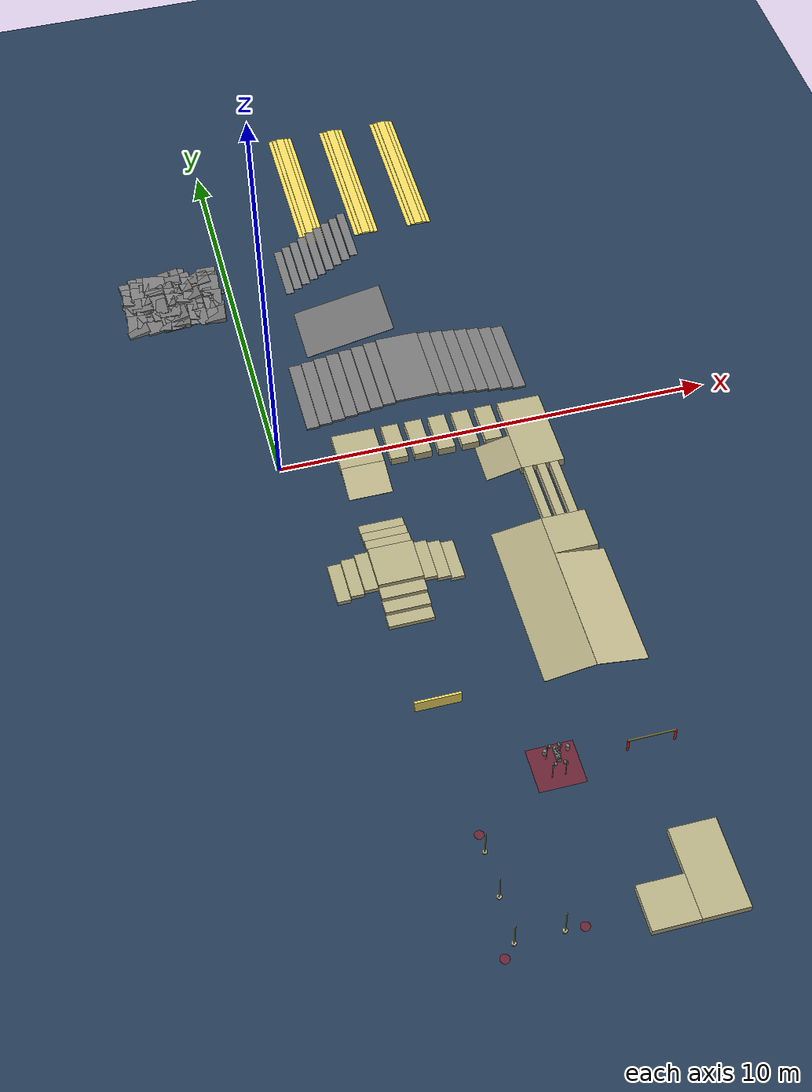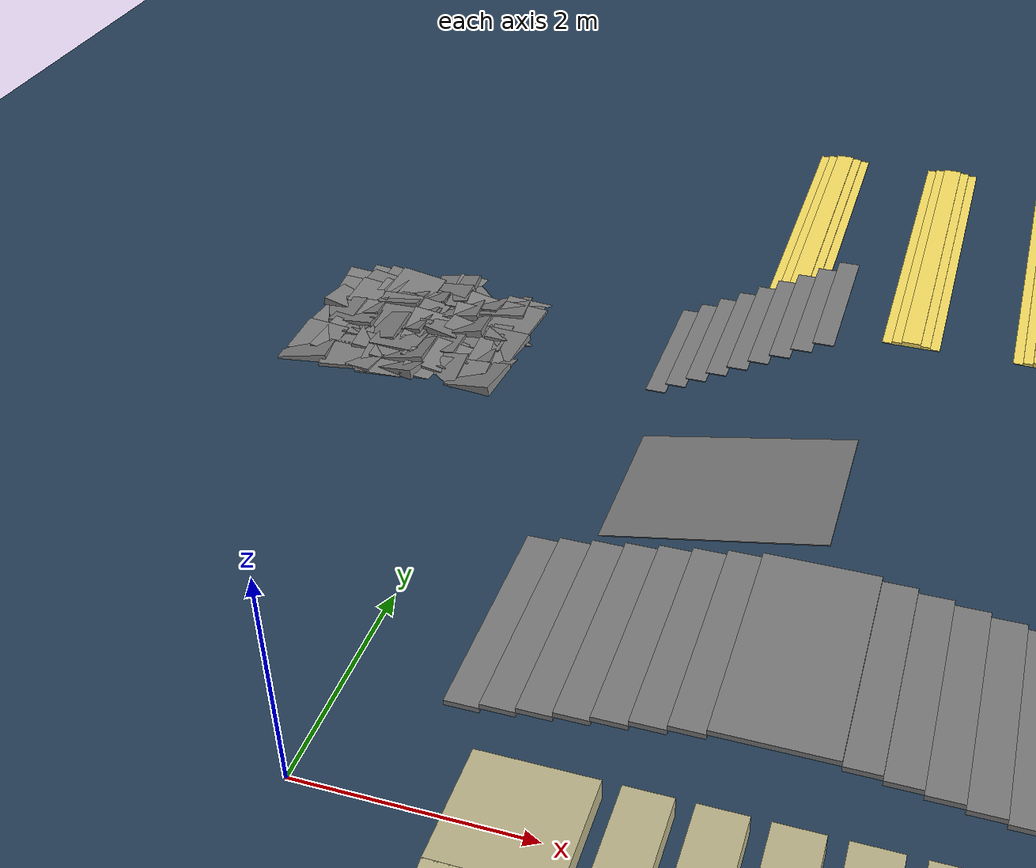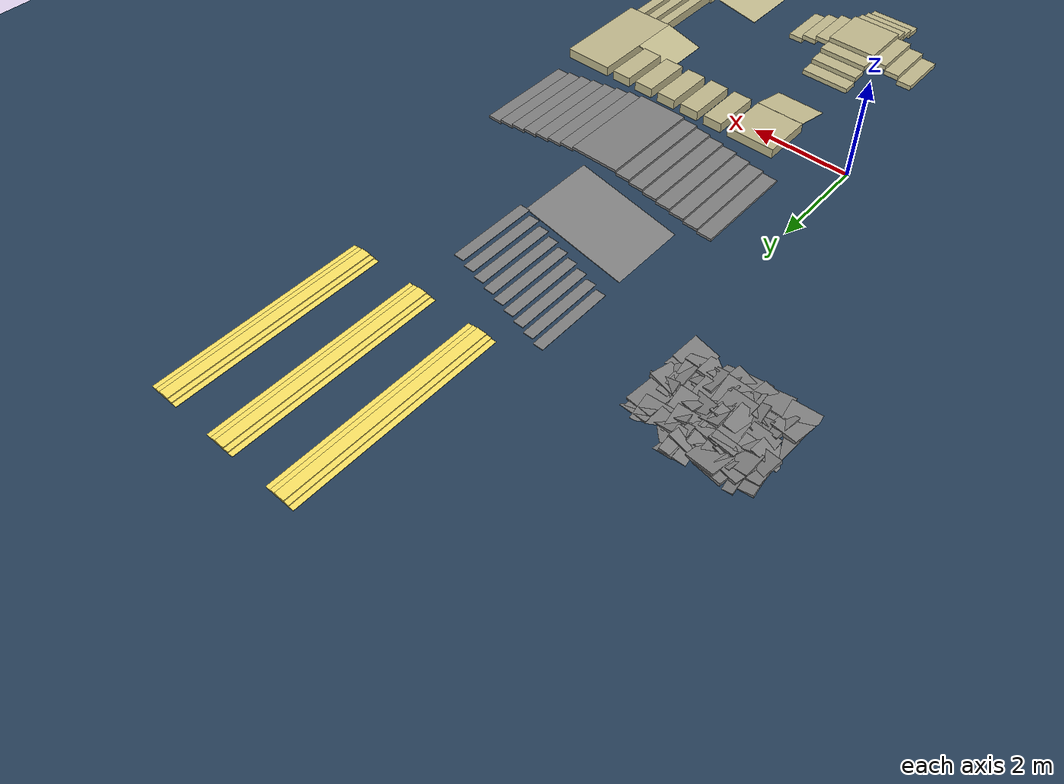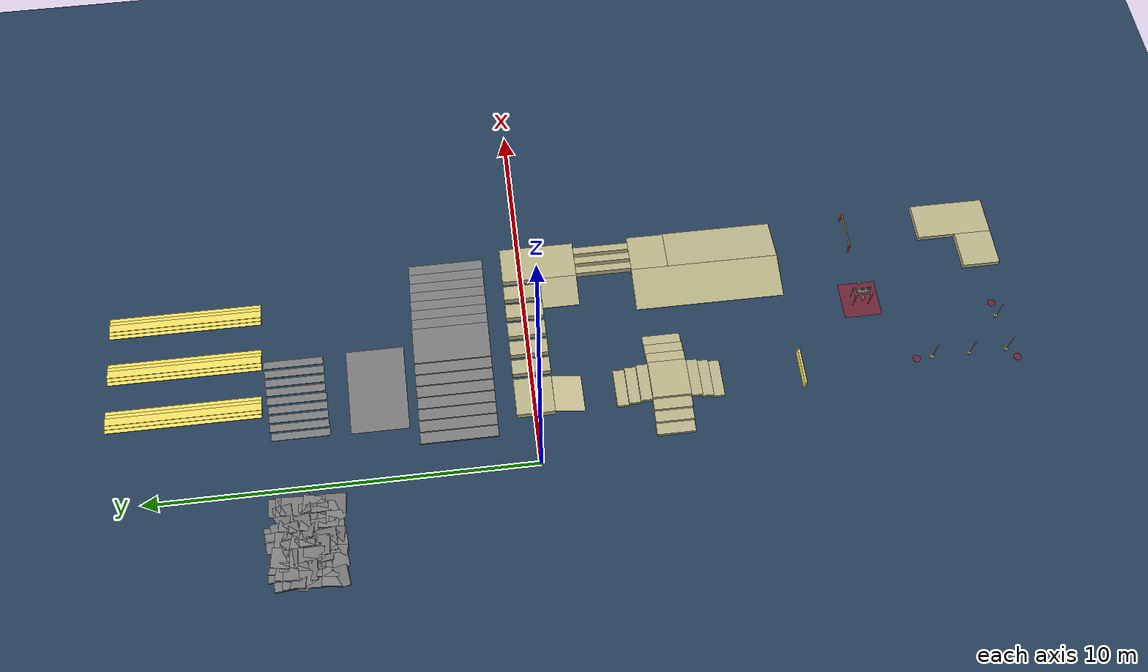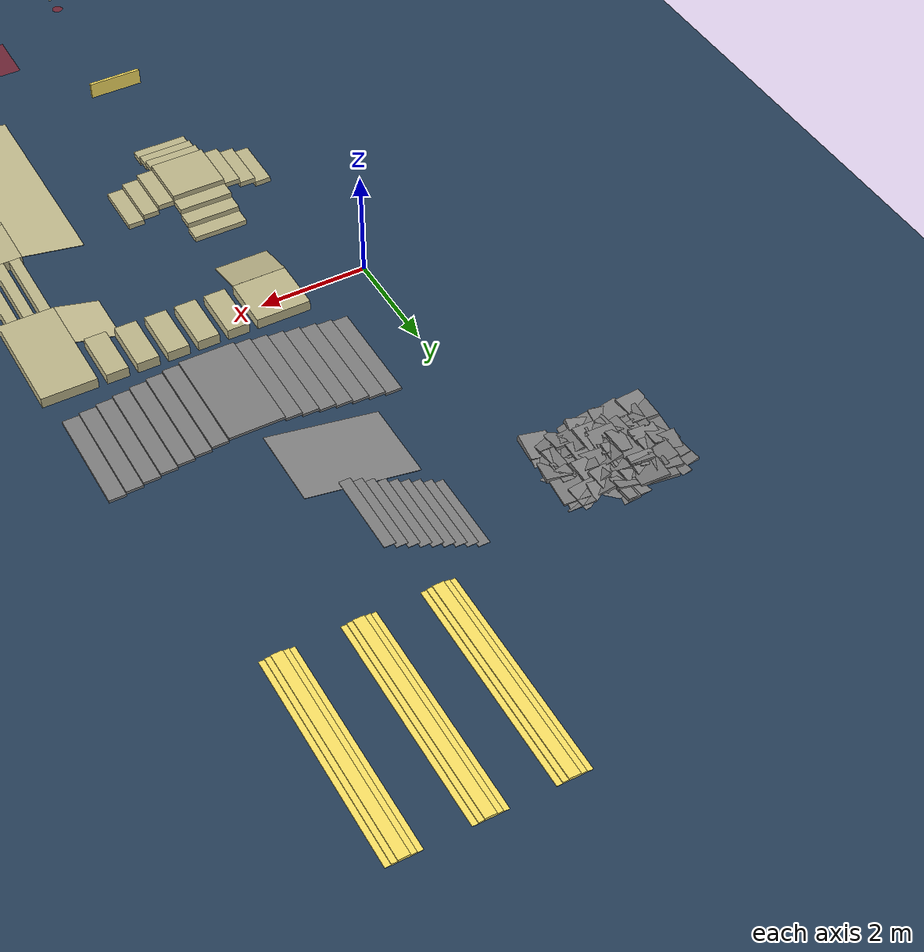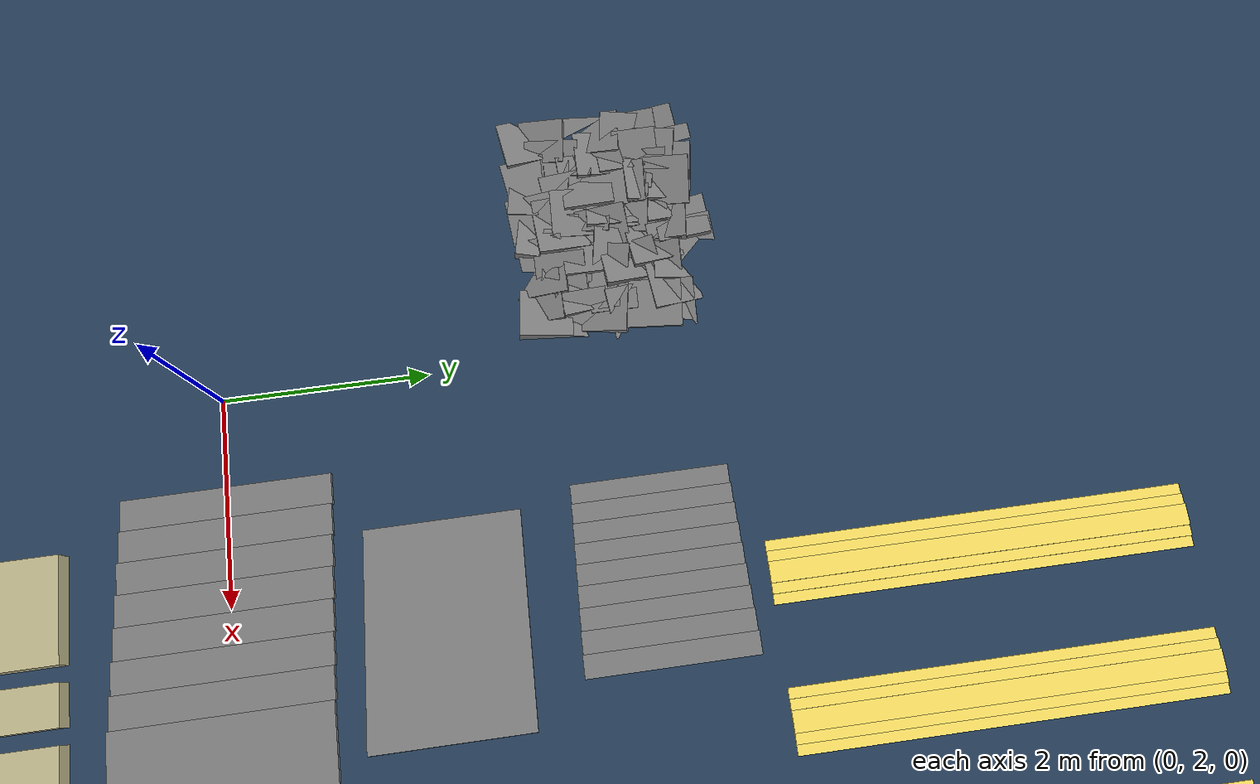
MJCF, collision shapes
<mujoco model="dog terrain scene">
<compiler angle="radian" meshdir="../meshes/"/>
<size njmax="500" nconmax="100"/>
<option gravity="0 0 -9.806" iterations="100" solver="Newton" timestep="0.005" integrator="implicitfast"/>

<default>
  <geom contype="1" conaffinity="1" condim="6" friction="0.6 0.005 0.01" margin="0.001" group="0"/>
  <light castshadow="false" diffuse="1 1 1"/>
  <joint damping="0.01" armature="0.01" frictionloss="0.2"/>
  <camera fovy="60"/>
</default>

<statistic center="3.7 -9.0 0.4" extent="5.0"/>
<visual>
<headlight diffuse="0.6 0.6 0.6" ambient="0.3 0.3 0.3" specular="0 0 0"/>
<rgba haze="0.15 0.25 0.35 1" com="0.502 1.0 0 0.5" contactforce="0.98 0.4 0.4 0.7" contactpoint="1.0 1.0 0.6 0.4"/>
<global azimuth="90" elevation="-20"/>
<scale com="0.2" forcewidth="0.035" contactwidth="0.10" contactheight="0.04"/>
</visual>
<asset>
<texture type="skybox" builtin="gradient" rgb1="0.3 0.5 0.7" rgb2="0 0 0" width="512" height="3072"/>
<texture type="2d" name="groundplane" builtin="checker" mark="edge" rgb1="0.2 0.3 0.4" rgb2="0.1 0.2 0.3" markrgb="0.8 0.8 0.8" width="300" height="300"/>
<material name="groundplane" texture="groundplane" texuniform="true" texrepeat="5 5" reflectance="0.2"/>

<!-- dog_t meshes -->
<mesh name="base"     file="base.STL"/>
<mesh name="imu"      file="imu.STL"/>
<mesh name="radar"    file="radar.STL"/>
<mesh name="camera"   file="camera.STL"/>
<mesh name="pump"     file="pump.STL"/>
<mesh name="FL_hip"   file="FL_hip.STL"/>
<mesh name="FL_thigh" file="FL_thigh.STL"/>
<mesh name="FL_calf"  file="FL_calf.STL"/>
<mesh name="FL_foot"  file="FL_foot.STL"/>
<mesh name="FR_hip"   file="FR_hip.STL"/>
<mesh name="FR_thigh" file="FR_thigh.STL"/>
<mesh name="FR_calf"  file="FR_calf.STL"/>
<mesh name="FR_foot"  file="FR_foot.STL"/>
<mesh name="RR_hip"   file="RR_hip.STL"/>
<mesh name="RR_thigh" file="RR_thigh.STL"/>
<mesh name="RR_calf"  file="RR_calf.STL"/>
<mesh name="RR_foot"  file="RR_foot.STL"/>
<mesh name="RL_hip"   file="RL_hip.STL"/>
<mesh name="RL_thigh" file="RL_thigh.STL"/>
<mesh name="RL_calf"  file="RL_calf.STL"/>
<mesh name="RL_foot"  file="RL_foot.STL"/>
</asset>
<worldbody>
<light pos="0 0 1.5" dir="0 0 -1" directional="true" />
<camera name="track" mode="trackcom" pos="0 -1.3 1.6" xyaxes="1 0 0 0 0.707 0.707"/>
<geom name="floor" size="0 0 0.05" type="plane" material="groundplane" />

<!-- 30cm高墙：旋转90度，沿x轴方向放置，并与T型楼梯中心线 y=-3.50 对齐 -->
<geom pos="1.8 -7.0 0.15"
      type="box"
      size="0.025 0.5 0.15"
      quat="0.7071068 0.0 0.0 0.7071068"
      rgba="1.0 0.9 0.4 1.0"/>

<!-- 沙砾碎木坑：x正方向边界与10度斜坡+x边界对齐，y正边界距斜坡y负边界4m -->

<geom pos="4.8361 -12.5 0.075"
      type="box"
      size="0.5 0.5 0.075"
      quat="0.0 0.0 0.0 1.0"
      rgba="0.75 0.72 0.55 1.0"/>

<geom pos="5.8361 -12.0 0.075"
      type="box"
      size="0.5 1.0 0.075"
      quat="0.0 0.0 0.0 1.0"
      rgba="0.75 0.72 0.55 1.0"/>

<!-- 限高杆 -->
<geom pos="6.2 -9.0 0.155"
      type="cylinder"
      size="0.025 0.155"
      quat="1.0 0.0 0.0 0.0"
      rgba="0.8 0.1 0.1 1.0" />

<geom pos="5.2 -9.0 0.155"
      type="cylinder"
      size="0.025 0.155"
      quat="1.0 0.0 0.0 0.0"
      rgba="0.8 0.1 0.1 1.0" />
<geom pos="5.7 -9.0 0.325"
      type="cylinder"
      size="0.015 0.5"
      quat="0.7071068 0.0 0.7071068 0.0"
      rgba="1.0 0.9 0.4 1.0"/>

<!-- 1m × 1m 正方形颜色块，出发区-->
<geom pos="3.7 -9.0 0.0"
      type="box"
      size="0.5 0.5 0.001"
      rgba="1.0 0.0 0.0 0.35"
      contype="0"
      conaffinity="0" />

<!-- 10cm梯形台阶：T型楼梯，最高平台与 x=5.7 y=-3.5 平台在y轴方向对齐 -->

<geom pos="1.80 -4.75 0.05" type="box" size="0.15 0.5 0.05" quat="0.7071068 0.0 0.0 0.7071068" rgba="0.75 0.72 0.55 1.0" />
<geom pos="1.80 -4.45 0.15" type="box" size="0.15 0.5 0.05" quat="0.7071068 0.0 0.0 0.7071068" rgba="0.75 0.72 0.55 1.0"/>
<geom pos="1.80 -4.15 0.25" type="box" size="0.15 0.5 0.05" quat="0.7071068 0.0 0.0 0.7071068" rgba="0.75 0.72 0.55 1.0"/>

<!-- 最高平台：y = -3.50，与目标平台y轴对齐 -->
<geom pos="1.80 -3.50 0.35" type="box" size="0.5 0.5 0.05" quat="0.7071068 0.0 0.0 0.7071068" rgba="0.75 0.72 0.55 1.0"/>

<geom pos="1.80 -2.85 0.25" type="box" size="0.15 0.5 0.05" quat="0.7071068 0.0 0.0 0.7071068" rgba="0.75 0.72 0.55 1.0"/>
<geom pos="1.80 -2.55 0.15" type="box" size="0.15 0.5 0.05" quat="0.7071068 0.0 0.0 0.7071068" rgba="0.75 0.72 0.55 1.0"/>
<geom pos="1.80 -2.25 0.05" type="box" size="0.15 0.5 0.05" quat="0.7071068 0.0 0.0 0.7071068" rgba="0.75 0.72 0.55 1.0"/>

<!-- 顶部平台向 +x 方向连接地面的10cm台阶，同样y轴移动到 -3.50 -->

<geom pos="2.45 -3.50 0.25" type="box" size="0.15 0.5 0.05" quat="1.0 0.0 0.0 0.0" rgba="0.75 0.72 0.55 1.0"/>
<geom pos="2.75 -3.50 0.15" type="box" size="0.15 0.5 0.05" quat="1.0 0.0 0.0 0.0" rgba="0.75 0.72 0.55 1.0"/>
<geom pos="3.05 -3.50 0.05" type="box" size="0.15 0.5 0.05" quat="1.0 0.0 0.0 0.0" rgba="0.75 0.72 0.55 1.0"/>

<!-- 顶部平台向 -x 方向连接地面的10cm台阶 -->

<geom pos="1.15 -3.50 0.25" type="box" size="0.15 0.5 0.05" quat="1.0 0.0 0.0 0.0" rgba="0.75 0.72 0.55 1.0"/>
<geom pos="0.85 -3.50 0.15" type="box" size="0.15 0.5 0.05" quat="1.0 0.0 0.0 0.0" rgba="0.75 0.72 0.55 1.0"/>
<geom pos="0.55 -3.50 0.05" type="box" size="0.15 0.5 0.05" quat="1.0 0.0 0.0 0.0" rgba="0.75 0.72 0.55 1.0"/>

<!-- 斜坡木桥A木桥B -->
<geom pos="1.8 -0.88 0.1" type="box" size="0.40 0.5 0.005" quat="0.701836 0.086175 -0.086175 0.701836" rgba="0.75 0.72 0.55 1.0"/>
<geom pos="1.8 0.0 0.10" type="box" size="0.5 0.5 0.10" quat="1.0 0.0 0.0 0.0" rgba="0.75 0.72 0.55 1.0"/>
<geom pos="2.65 0.0 0.10" type="box" size="0.2 0.5 0.10" quat="1.0 0.0 0.0 0.0" rgba="0.75 0.72 0.55 1.0"/>
<geom pos="3.2 0.0 0.10" type="box" size="0.2 0.5 0.10" quat="1.0 0.0 0.0 0.0" rgba="0.75 0.72 0.55 1.0"/>
<geom pos="3.75 0.0 0.10" type="box" size="0.2 0.5 0.10" quat="1.0 0.0 0.0 0.0" rgba="0.75 0.72 0.55 1.0"/>
<geom pos="4.3 0.0 0.10" type="box" size="0.2 0.5 0.10" quat="1.0 0.0 0.0 0.0" rgba="0.75 0.72 0.55 1.0"/>
<geom pos="4.85 0.0 0.10" type="box" size="0.2 0.5 0.10" quat="1.0 0.0 0.0 0.0" rgba="0.75 0.72 0.55 1.0"/>
<geom pos="5.7 -0.5 0.10" type="box" size="0.5 1.0 0.10" quat="1.0 0.0 0.0 0.0" rgba="0.75 0.72 0.55 1.0"/>
<geom pos="4.8002 -1.0 0.0951"
      type="box"
      size="0.4133 0.5 0.005"
      quat="0.992546 0.0 -0.121869 0.0"
      rgba="0.75 0.72 0.55 1.0"/>
<geom pos="5.35 -2.25 0.10" type="box" size="0.1 0.75 0.10" quat="1.0 0.0 0.0 0.0" rgba="0.75 0.72 0.55 1.0"/>
<geom pos="5.65 -2.25 0.10" type="box" size="0.1 0.75 0.10" quat="1.0 0.0 0.0 0.0" rgba="0.75 0.72 0.55 1.0"/>
<geom pos="5.95 -2.25 0.10" type="box" size="0.1 0.75 0.10" quat="1.0 0.0 0.0 0.0" rgba="0.75 0.72 0.55 1.0"/>
<geom pos="5.7 -3.5 0.10" type="box" size="0.5 0.5 0.10" quat="1.0 0.0 0.0 0.0" rgba="0.75 0.72 0.55 1.0"/>
<!-- 10度斜坡：宽4m，斜坡 y正方向边缘 与平台 y正方向边缘 对齐 -->
<geom pos="4.6338 -5.0 0.0951"
      type="box"
      size="0.5759 2.0 0.005"
      quat="0.9961947 0.0 -0.0871557 0.0"
      rgba="0.75 0.72 0.55 1.0"/>
<!-- 新建10度斜坡：宽3m，高端与前一个10度斜坡高端衔接，向+x方向下坡 -->
<geom pos="5.7681 -5.5 0.0951"
      type="box"
      size="0.5759 1.5 0.005"
      quat="0.9961947 0.0 0.0871557 0.0"
      rgba="0.75 0.72 0.55 1.0"/>

<!--绕杆-->
<!-- 直径1m圆形颜色块，仅显示，不碰撞 -->
<geom pos="1.8 -10.1 0.0"
      type="cylinder"
      size="0.1 0.001"
      rgba="1.0 0.0 0.0 0.35"
      contype="0"
      conaffinity="0" />

<geom pos="3.2 -12.5 0.0"
      type="cylinder"
      size="0.1 0.001"
      rgba="1.0 0.0 0.0 0.35"
      contype="0"
      conaffinity="0" />

<geom pos="1.55 -12.75 0.0"
      type="cylinder"
      size="0.1 0.001"
      rgba="1.0 0.0 0.0 0.35"
      contype="0"
      conaffinity="0" />

<!-- 原杆 -->
<geom pos="1.8 -10.5 0.02"
      type="cylinder"
      size="0.05 0.02"
      quat="1.0 0.0 0.0 0.0"
      rgba="0.75 0.72 0.55 1.0" />

<geom pos="1.8 -10.5 0.37"
      type="cylinder"
      size="0.015 0.33"
      quat="1.0 0.0 0.0 0.0"
      rgba="0.75 0.72 0.55 1.0" />

<!-- y轴负方向第1根：间隔1m -->
<geom pos="1.8 -11.5 0.02"
      type="cylinder"
      size="0.05 0.02"
      quat="1.0 0.0 0.0 0.0"
      rgba="0.75 0.72 0.55 1.0" />

<geom pos="1.8 -11.5 0.37"
      type="cylinder"
      size="0.015 0.33"
      quat="1.0 0.0 0.0 0.0"
      rgba="0.75 0.72 0.55 1.0" />

<!-- y轴负方向第2根：继续间隔1m -->
<geom pos="1.8 -12.5 0.02"
      type="cylinder"
      size="0.05 0.02"
      quat="1.0 0.0 0.0 0.0"
      rgba="0.75 0.72 0.55 1.0" />

<geom pos="1.8 -12.5 0.37"
      type="cylinder"
      size="0.015 0.33"
      quat="1.0 0.0 0.0 0.0"
      rgba="0.75 0.72 0.55 1.0" />

<!-- x轴正方向第3根：继续间隔1m -->
<geom pos="2.8 -12.5 0.02"
      type="cylinder"
      size="0.05 0.02"
      quat="1.0 0.0 0.0 0.0"
      rgba="0.75 0.72 0.55 1.0" />

<geom pos="2.8 -12.5 0.37"
      type="cylinder"
      size="0.015 0.33"
      quat="1.0 0.0 0.0 0.0"
      rgba="0.75 0.72 0.55 1.0" />

<!--===================================================================其他障碍=====================================================================================-->

<!-- 5cm台阶 -->
<geom pos="1.0 2.0 0.025" type="box" size="0.15 1.0 0.025" quat="1.0 0.0 0.0 0.0" />
<geom pos="1.3 2.0 0.075" type="box" size="0.15 1.0 0.025" quat="1.0 0.0 0.0 0.0" />
<geom pos="1.6 2.0 0.125" type="box" size="0.15 1.0 0.025" quat="1.0 0.0 0.0 0.0" />
<geom pos="1.9 2.0 0.175" type="box" size="0.15 1.0 0.025" quat="1.0 0.0 0.0 0.0" />
<geom pos="2.2 2.0 0.225" type="box" size="0.15 1.0 0.025" quat="1.0 0.0 0.0 0.0" />
<geom pos="2.5 2.0 0.275" type="box" size="0.15 1.0 0.025" quat="1.0 0.0 0.0 0.0" />
<geom pos="2.8 2.0 0.325" type="box" size="0.15 1.0 0.025" quat="1.0 0.0 0.0 0.0" />
<geom pos="3.45 2.0 0.375" type="box" size="0.5 1.0 0.025" quat="1.0 0.0 0.0 0.0" />
<geom pos="4.1 2.0 0.325" type="box" size="0.15 1.0 0.025" quat="1.0 0.0 0.0 0.0" />
<geom pos="4.4 2.0 0.275" type="box" size="0.15 1.0 0.025" quat="1.0 0.0 0.0 0.0" />
<geom pos="4.7 2.0 0.225" type="box" size="0.15 1.0 0.025" quat="1.0 0.0 0.0 0.0" />
<geom pos="5.0 2.0 0.175" type="box" size="0.15 1.0 0.025" quat="1.0 0.0 0.0 0.0" />
<geom pos="5.3 2.0 0.125" type="box" size="0.15 1.0 0.025" quat="1.0 0.0 0.0 0.0" />
<geom pos="5.6 2.0 0.075" type="box" size="0.15 1.0 0.025" quat="1.0 0.0 0.0 0.0" />
<geom pos="5.9 2.0 0.025" type="box" size="0.15 1.0 0.025" quat="1.0 0.0 0.0 0.0" />

<!-- 斜坡 -->
<geom pos="2.0 4.0 0.1" type="box" size="1.5 0.75 0.005" quat="0.9950041652780258 0.0 -0.09983341664682815 0.0" />

<geom pos="1.4 6.0 0.165" type="box" size="0.1 0.75 0.0049999999999999975" quat="1.0 0.0 0.0 0.0"/>
<geom pos="1.6 6.0 0.275" type="box" size="0.1 0.75 0.0049999999999999975" quat="1.0 0.0 0.0 0.0"/>
<geom pos="1.8 6.0 0.385" type="box" size="0.1 0.75 0.0049999999999999975" quat="1.0 0.0 0.0 0.0"/>
<geom pos="2.0 6.0 0.495" type="box" size="0.1 0.75 0.0049999999999999975" quat="1.0 0.0 0.0 0.0"/>
<geom pos="2.2 6.0 0.605" type="box" size="0.1 0.75 0.0049999999999999975" quat="1.0 0.0 0.0 0.0"/>
<geom pos="2.4 6.0 0.715" type="box" size="0.1 0.75 0.0049999999999999975" quat="1.0 0.0 0.0 0.0"/>
<geom pos="2.5999999999999996 6.0 0.825" type="box" size="0.1 0.75 0.0049999999999999975" quat="1.0 0.0 0.0 0.0"/>
<geom pos="2.8 6.0 0.9349999999999999" type="box" size="0.1 0.75 0.0049999999999999975" quat="1.0 0.0 0.0 0.0"/>
<geom pos="3.0 6.0 1.045" type="box" size="0.1 0.75 0.0049999999999999975" quat="1.0 0.0 0.0 0.0"/>
<geom pos="-2.3179973398407565 5.173660321080885 -0.25" type="box" size="0.2568216778785459 0.2608020098770089 0.2619541072037832" quat="0.9930658271270357 -0.05910360995856133 -0.06731065544310916 0.0761334482746007"/>
<geom pos="-2.3179973398407565 5.3620612607436735 -0.25" type="box" size="0.23778028947050467 0.26051225137569556 0.27137457425982286" quat="0.9959802827127009 0.07435995796871331 0.0004862731479656538 -0.04993632582444846"/>
<geom pos="-2.3179973398407565 5.545897059602109 -0.25" type="box" size="0.23841994611378936 0.2717839884518381 0.22585827399286504" quat="0.9983504429181294 -0.004811901627841528 0.03471877670768104 -0.045473566737405234"/>
<geom pos="-2.3179973398407565 5.7436240471772795 -0.25" type="box" size="0.2552179019048769 0.2548992578792955 0.22547735976326444" quat="0.9968270877924189 -0.029673908987198697 0.06777847718526858 -0.029347814214192768"/>
<geom pos="-2.3179973398407565 5.940214647011584 -0.25" type="box" size="0.24313116620329878 0.2372064979204117 0.26079933745117434" quat="0.9952106364954509 0.05088987714749159 -0.07605843245051555 -0.03436748846516202"/>
<geom pos="-2.3179973398407565 6.165430585901471 -0.25" type="box" size="0.24786042386990592 0.2322559052231109 0.2644037606269708" quat="0.9936075351397807 -0.05017393314139304 0.06986162224674641 -0.07311632022760194"/>
<geom pos="-2.3179973398407565 6.315657865031069 -0.25" type="box" size="0.23704265198840277 0.24982080672772003 0.2530694373586838" quat="0.9981716459301547 0.036179123385437884 0.04523497974247521 0.017269420947002005"/>
<geom pos="-2.3179973398407565 6.489372835072359 -0.25" type="box" size="0.2647428927965494 0.2716292502682415 0.23725049444938928" quat="0.9954041516289313 0.019099981466976248 0.07663366510923347 0.05415761257454444"/>
<geom pos="-2.094119617957536 5.194943631570213 -0.25" type="box" size="0.23176840693038148 0.23782936054799508 0.2282032657053922" quat="0.9973366591969123 0.030692664684553082 -0.030015392527106853 0.058962910104125923"/>
<geom pos="-2.094119617957536 5.441090326561234 -0.25" type="box" size="0.2602142310926322 0.27213502289176367 0.2574009440402366" quat="0.9948915480473169 0.023650461407535205 0.08508706956405496 -0.04890453856469255"/>
<geom pos="-2.094119617957536 5.642958951230403 -0.25" type="box" size="0.24800055056479955 0.24050676557282252 0.23522489807277194" quat="0.9912055235117067 0.06188914817453858 -0.09720856678264424 -0.0650525790586179"/>
<geom pos="-2.094119617957536 5.884810142659838 -0.25" type="box" size="0.24637516954806898 0.24364583504893206 0.2682443460752295" quat="0.9964495083946477 -0.07467561549070643 -0.038754439691442995 0.003165924091257204"/>
<geom pos="-2.094119617957536 6.129893093768145 -0.25" type="box" size="0.2378958269703999 0.25045408022075055 0.24760364656411665" quat="0.9946240462872651 -0.03963038800955788 -0.08917648605658504 0.03464091840526007"/>
<geom pos="-2.094119617957536 6.31135792935651 -0.25" type="box" size="0.2612154064649683 0.2252849660353503 0.26933214617336004" quat="0.997742809172301 0.019590451180868298 0.06391648942914147 -0.006339033565912353"/>
<geom pos="-2.094119617957536 6.4905285510291915 -0.25" type="box" size="0.22768983323309258 0.23025468157122184 0.2748062344121069" quat="0.9940843963100783 0.05105793020576152 0.009164090402224958 -0.0954218016127878"/>
<geom pos="-2.094119617957536 6.650993287072798 -0.25" type="box" size="0.25443787917913946 0.24575387105878618 0.22934424641420587" quat="0.9953832160779188 -0.0075142647566912866 0.08305501342257929 0.04751477371219154"/>
<geom pos="-1.8951777534978893 5.178742263102535 -0.25" type="box" size="0.256127371544264 0.24353861032614957 0.2714578153598507" quat="0.996547165679354 -0.008558846106514282 0.009384988866828401 0.08205129318749771"/>
<geom pos="-1.8951777534978893 5.353646654030374 -0.25" type="box" size="0.23858897994497189 0.2426691342857623 0.26961659613969635" quat="0.997689480058865 0.014145078555906384 0.009115651940537827 -0.06582190381793727"/>
<geom pos="-1.8951777534978893 5.575640096199311 -0.25" type="box" size="0.24430646334884096 0.2676093509240798 0.23693271670520474" quat="0.9976019172675967 -0.06794745094616256 0.006187887696065785 -0.011630503849579829"/>
<geom pos="-1.8951777534978893 5.728196634759373 -0.25" type="box" size="0.25668697148716296 0.2743986770827004 0.23696403861156407" quat="0.9946311966964959 -0.0774649076913635 0.05866511796477466 0.03558615698054331"/>
<geom pos="-1.8951777534978893 5.954288148947323 -0.25" type="box" size="0.2748179458028994 0.25407956175122554 0.25142548243710355" quat="0.9927720663552536 0.03885622734718657 0.06180632563910765 0.09525647469886914"/>
<geom pos="-1.8951777534978893 6.198076908897641 -0.25" type="box" size="0.23522918501552104 0.2714895927340788 0.23659922178360912" quat="0.9944408196408429 0.027722532803612636 -0.06883505448003607 -0.07470376618171105"/>
<geom pos="-1.8951777534978893 6.356335079330304 -0.25" type="box" size="0.253243646653926 0.26648639763264487 0.22751627090926196" quat="0.9924345646356405 0.06351743627133029 0.09661714031088077 -0.041283149154730255"/>
<geom pos="-1.8951777534978893 6.6037178705715744 -0.25" type="box" size="0.2664884535468762 0.26472237049442093 0.2545826559482188" quat="0.996208812433608 0.04792667434016892 0.03088022810200046 -0.06570728596343135"/>
<geom pos="-1.7450143557797366 5.181798049538029 -0.25" type="box" size="0.22764974830145798 0.2314500042225232 0.26635647118774647" quat="0.996420562587967 -0.02530598413067966 -0.01712092616039989 -0.07881968983996092"/>
<geom pos="-1.7450143557797366 5.396539066742657 -0.25" type="box" size="0.24515338305934362 0.25502436912192245 0.23509532716059323" quat="0.9974817825235419 0.033698559354477776 -0.06057332552735373 -0.01501242370995589"/>
<geom pos="-1.7450143557797366 5.5477605493550115 -0.25" type="box" size="0.2368415768982088 0.2653984778068547 0.25193186806340717" quat="0.9933816957092091 -0.04426535864216467 0.0892264769079807 0.057201577537394625"/>
<geom pos="-1.7450143557797366 5.764238738853998 -0.25" type="box" size="0.257475541143157 0.25587521442146555 0.2684267956125346" quat="0.9955849335110497 0.004076118120639651 -0.09299366924131539 0.012091439447074191"/>
<geom pos="-1.7450143557797366 5.942956213887727 -0.25" type="box" size="0.23647345784635188 0.22779489919605103 0.2690566454457882" quat="0.9997372307105926 0.020286738832439623 -0.010113822112874779 0.003410038259163467"/>
<geom pos="-1.7450143557797366 6.162981335139796 -0.25" type="box" size="0.2336152227884161 0.23785626414299832 0.26272786991330355" quat="0.9954569549676405 0.08638675499005252 -0.03150236191317218 -0.024705881136540285"/>
<geom pos="-1.7450143557797366 6.344025407207907 -0.25" type="box" size="0.2364006101773331 0.23674709170116234 0.2660167000427503" quat="0.9941020005048972 -0.09350614404282417 -0.05493059192638792 0.0006660998579442658"/>
<geom pos="-1.7450143557797366 6.5791872438688825 -0.25" type="box" size="0.259653062502181 0.26359758888480966 0.27170867851854713" quat="0.9955751902075182 0.06572529509454274 0.04059253213564211 -0.05350207998588654"/>
<geom pos="-1.4950537649717406 5.196975242498044 -0.25" type="box" size="0.24902209995429173 0.24604186796843594 0.26555264385759036" quat="0.9981753741369879 0.027059282981497578 0.02078151255996191 0.049818133312398136"/>
<geom pos="-1.4950537649717406 5.415093649392617 -0.25" type="box" size="0.22561317519118573 0.23246623591498758 0.2516053992906602" quat="0.9961431033663982 -0.019679813255757937 0.07777937635153075 0.035524515199325105"/>
<geom pos="-1.4950537649717406 5.596072881787104 -0.25" type="box" size="0.2545347271371952 0.2527292932516396 0.272364707011277" quat="0.9987990019474599 -0.0468132050914785 0.002764373695484487 -0.01419280718860587"/>
<geom pos="-1.4950537649717406 5.788444207457658 -0.25" type="box" size="0.257823578756761 0.22815201323013437 0.2506904868770564" quat="0.9907800223935689 0.08207700037219429 -0.06679273748567588 -0.08459931119619979"/>
<geom pos="-1.4950537649717406 5.962479724512656 -0.25" type="box" size="0.23447002037921025 0.260091883647859 0.2613547781123637" quat="0.994185747243896 -0.045779429335849345 -0.09537527521663794 -0.020062420196245392"/>
<geom pos="-1.4950537649717406 6.137620949716146 -0.25" type="box" size="0.25502378303486756 0.24137626830945555 0.26521755821448284" quat="0.9954511067004865 0.04827241542514884 0.023378972724717166 -0.07874193109224191"/>
<geom pos="-1.4950537649717406 6.345742058941403 -0.25" type="box" size="0.23763376291279575 0.27259418014745557 0.24184880568666417" quat="0.9979730938550316 -0.0521706328108408 -0.03256129013590577 0.01636127740178204"/>
<geom pos="-1.4950537649717406 6.548966807280673 -0.25" type="box" size="0.23004532593424165 0.24736965888987583 0.22917624237245732" quat="0.993938322382385 -0.041286377558295506 -0.09233464220936707 0.04308549844056845"/>
<geom pos="-1.2872521554407157 5.194072124237239 -0.25" type="box" size="0.2725857334366114 0.23611730648841156 0.25109418723334265" quat="0.9870880287314421 -0.09538067591152324 -0.0888119213223197 -0.09312460914696315"/>
<geom pos="-1.2872521554407157 5.418639818976418 -0.25" type="box" size="0.2326397456179607 0.2609646699674687 0.2717115772948157" quat="0.9928206111485406 -0.07383059897166898 -0.08473752136579614 0.040936892980589765"/>
<geom pos="-1.2872521554407157 5.655974569843163 -0.25" type="box" size="0.22633109461398734 0.25911291311168594 0.23532484499883452" quat="0.9947769304653071 -0.023834507399340135 0.09176246279588879 -0.037820963666801724"/>
<geom pos="-1.2872521554407157 5.8981628648303595 -0.25" type="box" size="0.27278934520816167 0.2559269445001904 0.26076472835929454" quat="0.9936318869346414 0.0561019165840355 0.09234219275279033 0.0319557140415977"/>
<geom pos="-1.2872521554407157 6.064939027275534 -0.25" type="box" size="0.2481756437845515 0.2613413397088905 0.24788858471207542" quat="0.9992310163557966 0.006919915638721734 0.03652449975321466 -0.012468024618680441"/>
<geom pos="-1.2872521554407157 6.288670079370122 -0.25" type="box" size="0.2574127585385611 0.27445220033632356 0.22507618952620437" quat="0.9984337612791753 0.04947883993440395 -0.0010074967830211658 -0.026093173185657285"/>
<geom pos="-1.2872521554407157 6.4987760234638605 -0.25" type="box" size="0.2442462188069663 0.2639082925274208 0.24918893213917415" quat="0.9910480688126146 0.08639971284060838 -0.0903343762232188 -0.04688832899783648"/>
<geom pos="-1.2872521554407157 6.675611985491267 -0.25" type="box" size="0.2507168814441121 0.26699708557208374 0.26588306060638556" quat="0.9968882348111167 0.009466759168649483 -0.06920917552433178 0.03652831489763918"/>
<geom pos="-1.0678149575697586 5.238251070535694 -0.25" type="box" size="0.2331754586513582 0.22873009754409884 0.2593258638743009" quat="0.9962563091989393 0.014506022500180732 0.069646748226122 0.049114887295595266"/>
<geom pos="-1.0678149575697586 5.471732496077581 -0.25" type="box" size="0.2653495693182789 0.26581370557074685 0.2509273010188512" quat="0.9948019811445705 -0.05898118120008214 0.04034485064897968 -0.07254330845220838"/>
<geom pos="-1.0678149575697586 5.691153717662407 -0.25" type="box" size="0.26309077142424103 0.26536949948987093 0.26566703066149744" quat="0.998331608401392 -0.025703385975953945 -0.05139460706256987 0.005650661991725779"/>
<geom pos="-1.0678149575697586 5.938910564562482 -0.25" type="box" size="0.23082606038737274 0.23890770539441533 0.25941695887199245" quat="0.99040745217393 -0.09494180013051996 0.05600240658814475 -0.08332384846283197"/>
<geom pos="-1.0678149575697586 6.13746533389903 -0.25" type="box" size="0.2676431215498913 0.2569308659994288 0.24597694927356487" quat="0.9955894165044442 0.04511524606234168 -0.003741035154326279 -0.08217258042101841"/>
<geom pos="-1.0678149575697586 6.328213254628996 -0.25" type="box" size="0.24188540919954635 0.25556145122229207 0.2605619987765001" quat="0.9929731934387934 -0.06598945456828725 -0.06809928840246085 0.07079629875087447"/>
<geom pos="-1.0678149575697586 6.554891603524267 -0.25" type="box" size="0.23121916641107804 0.25266417867731916 0.25489063309084503" quat="0.9984565221200774 -0.02714563973423854 0.029423903667849492 0.03849573446816443"/>
<geom pos="-1.0678149575697586 6.718482966003368 -0.25" type="box" size="0.27418971733780156 0.2623437838864593 0.23694037285314332" quat="0.9968347573500278 0.015128289848683302 0.06990516881209438 0.03471121949050888"/>
<geom pos="-0.8851136474992356 5.233272057743225 -0.25" type="box" size="0.2587161160845902 0.2542459313914242 0.25268742624288776" quat="0.9956323623605605 0.07455213252171443 -0.05585558926184348 0.006191260373025539"/>
<geom pos="-0.8851136474992356 5.410759300563648 -0.25" type="box" size="0.24019625793101548 0.2509280955260936 0.26698317271101046" quat="0.9960056830073374 0.025487333399660517 0.08516393482003458 -0.008377318140719903"/>
<geom pos="-0.8851136474992356 5.622546965631826 -0.25" type="box" size="0.22527085609750916 0.22924847380626232 0.23073331588883172" quat="0.9982201065088221 0.016292210993739946 0.013620740418279952 0.05572843307423328"/>
<geom pos="-0.8851136474992356 5.856118124892678 -0.25" type="box" size="0.26833255247166926 0.2512767990265972 0.2502231376336179" quat="0.9914910532543448 0.0657880493114159 0.05073139628229043 -0.10021850784978792"/>
<geom pos="-0.8851136474992356 6.010914595891683 -0.25" type="box" size="0.24926441451407527 0.22868800964152894 0.26501630221174116" quat="0.990736605756697 -0.0765632176593298 -0.09876375004658954 0.05314859727296924"/>
<geom pos="-0.8851136474992356 6.1657945570092965 -0.25" type="box" size="0.26823427325895977 0.263134568634285 0.23692064318485426" quat="0.9903439387899988 0.07219524819688558 0.09310840228148876 0.07305856872598579"/>
<geom pos="-0.8851136474992356 6.383066094410735 -0.25" type="box" size="0.23772929143507357 0.2619329708548053 0.23258884134606547" quat="0.9928463525385446 0.07348810370848206 0.09252710448645944 -0.017156742103069993"/>
<geom pos="-0.8851136474992356 6.551482176174038 -0.25" type="box" size="0.25127741834221506 0.25307864976328337 0.234931895271364" quat="0.994062479132312 -0.084918495271965 -0.05565932062022146 -0.03912386445844099"/>
<geom pos="-0.6441452943469552 5.193190826541208 -0.25" type="box" size="0.27016649011158844 0.23778885128164629 0.25859862297032477" quat="0.9957774962333289 0.08893738517887846 -0.021654911548168992 0.006955883744530942"/>
<geom pos="-0.6441452943469552 5.407266358883468 -0.25" type="box" size="0.24982888074520473 0.26972381569065607 0.2275629646713632" quat="0.9942571418988088 0.02444442288698024 0.050336521935401994 -0.09122193010664256"/>
<geom pos="-0.6441452943469552 5.56363948710079 -0.25" type="box" size="0.24725848381417467 0.2326432801330426 0.2476341019968084" quat="0.9935769557551848 -0.05688836927692267 -0.06858315894908604 0.0697488117593134"/>
<geom pos="-0.6441452943469552 5.716461923308758 -0.25" type="box" size="0.226746163574222 0.25188961955216527 0.24650452053954758" quat="0.9981029078160676 0.03471313574303335 -0.0493522060742233 -0.012245136651074443"/>
<geom pos="-0.6441452943469552 5.896430073001983 -0.25" type="box" size="0.25284949298017617 0.23421620066432108 0.2621382648463894" quat="0.9996413412447853 0.009523771195346772 -0.02374945051322109 -0.007902547492127014"/>
<geom pos="-0.6441452943469552 6.110845613879558 -0.25" type="box" size="0.23421403581041014 0.2504556848552827 0.24096555776925194" quat="0.9982371379292613 0.05906199571247059 0.004184466367765714 0.004097238396071534"/>
<geom pos="-0.6441452943469552 6.301410327752269 -0.25" type="box" size="0.2296817145699627 0.2701766916372966 0.22803599234835198" quat="0.9993879202059675 0.00903361239651759 0.0071600522792900426 -0.03302896372607247"/>
<geom pos="-0.6441452943469552 6.470340592771366 -0.25" type="box" size="0.2742166750011587 0.23990439594655139 0.2609404931878803" quat="0.9954980192986956 -0.06477558432537366 -0.03478863652617152 0.059812774691783824"/>
<geom pos="-0.43033316974190594 5.176946043237525 -0.25" type="box" size="0.2511344405622137 0.26383180387822514 0.2729516287367074" quat="0.9939152287364423 -0.054017256979398534 -0.08418383902399898 -0.0461273810376057"/>
<geom pos="-0.43033316974190594 5.409693792302493 -0.25" type="box" size="0.23878438774624536 0.22858057493504688 0.24808981791323623" quat="0.9942721168135948 -0.06322741578652484 -0.032958930763236916 -0.0796175891553822"/>
<geom pos="-0.43033316974190594 5.573593446642387 -0.25" type="box" size="0.2647545698926724 0.25215736713350106 0.25522885339490087" quat="0.9971918839448468 -0.004732654353889047 0.07222000940536273 0.019241071144380294"/>
<geom pos="-0.43033316974190594 5.819531161619798 -0.25" type="box" size="0.2538318010250847 0.23661725487197 0.26323696729639623" quat="0.9929867679849618 0.07588268800385974 -0.046355180482866284 -0.07791208834634974"/>
<geom pos="-0.43033316974190594 6.047888701789067 -0.25" type="box" size="0.25684720236482583 0.25568474221031684 0.24397094296107352" quat="0.9925256546500537 -0.08214715587137877 0.06615741576234473 0.06138294537877935"/>
<geom pos="-0.43033316974190594 6.283676056613722 -0.25" type="box" size="0.2432692787269645 0.2742601402399693 0.2689467974776609" quat="0.9989897410981501 0.0047037010179340685 0.0014590493232283363 -0.04466814919444852"/>
<geom pos="-0.43033316974190594 6.458239009480634 -0.25" type="box" size="0.2474330649412728 0.2551435998627988 0.23002773988805483" quat="0.9982311862818315 0.0506459597703481 0.025989046975463247 -0.01714802993392417"/>
<geom pos="-0.43033316974190594 6.703309377175586 -0.25" type="box" size="0.2301029552870502 0.2556223065028505 0.2349557527965884" quat="0.9948672058648923 -0.034182171957127715 -0.0030330068097560517 -0.09519255582537542"/>

<!-- 减速带 1：中心 x=2.35 -->
<geom pos="2.10 9.0 0.005" type="box" size="0.05 2.0 0.005" quat="1.0 0.0 0.0 0.0" rgba="1.0 0.9 0.4 1.0"/>
<geom pos="2.20 9.0 0.015" type="box" size="0.05 2.0 0.015" quat="1.0 0.0 0.0 0.0" rgba="1.0 0.9 0.4 1.0"/>
<geom pos="2.35 9.0 0.025" type="box" size="0.10 2.0 0.025" quat="1.0 0.0 0.0 0.0" rgba="1.0 0.9 0.4 1.0"/>
<geom pos="2.50 9.0 0.015" type="box" size="0.05 2.0 0.015" quat="1.0 0.0 0.0 0.0" rgba="1.0 0.9 0.4 1.0"/>
<geom pos="2.60 9.0 0.005" type="box" size="0.05 2.0 0.005" quat="1.0 0.0 0.0 0.0" rgba="1.0 0.9 0.4 1.0"/>

<!-- 减速带 2：中心 x=3.70 -->
<geom pos="3.45 9.0 0.005" type="box" size="0.05 2.0 0.005" quat="1.0 0.0 0.0 0.0" rgba="1.0 0.9 0.4 1.0"/>
<geom pos="3.55 9.0 0.015" type="box" size="0.05 2.0 0.015" quat="1.0 0.0 0.0 0.0" rgba="1.0 0.9 0.4 1.0"/>
<geom pos="3.70 9.0 0.025" type="box" size="0.10 2.0 0.025" quat="1.0 0.0 0.0 0.0" rgba="1.0 0.9 0.4 1.0"/>
<geom pos="3.85 9.0 0.015" type="box" size="0.05 2.0 0.015" quat="1.0 0.0 0.0 0.0" rgba="1.0 0.9 0.4 1.0"/>
<geom pos="3.95 9.0 0.005" type="box" size="0.05 2.0 0.005" quat="1.0 0.0 0.0 0.0" rgba="1.0 0.9 0.4 1.0"/>

<!-- 减速带 3：中心 x=5.05 -->
<geom pos="4.80 9.0 0.005" type="box" size="0.05 2.0 0.005" quat="1.0 0.0 0.0 0.0" rgba="1.0 0.9 0.4 1.0"/>
<geom pos="4.90 9.0 0.015" type="box" size="0.05 2.0 0.015" quat="1.0 0.0 0.0 0.0" rgba="1.0 0.9 0.4 1.0"/>
<geom pos="5.05 9.0 0.025" type="box" size="0.10 2.0 0.025" quat="1.0 0.0 0.0 0.0" rgba="1.0 0.9 0.4 1.0"/>
<geom pos="5.20 9.0 0.015" type="box" size="0.05 2.0 0.015" quat="1.0 0.0 0.0 0.0" rgba="1.0 0.9 0.4 1.0"/>
<geom pos="5.30 9.0 0.005" type="box" size="0.05 2.0 0.005" quat="1.0 0.0 0.0 0.0" rgba="1.0 0.9 0.4 1.0"/>

<!-- ============ Dog Robot (spawn at red square 3.7, -9.0) ============ -->
<body name="trunk" pos="3.7 -9.0 0.45" quat="-0.7071068 0 0 0.7071068">
      <joint type="free"/>
      <inertial pos="-0.00291826 8.3099e-06 0.00190096" mass="5.0" diaginertia="0.00274553070625574 0.00861431355066298 0.0100690956537535"/>
      <geom type="mesh" mesh="base" contype="0" conaffinity="0" group="1" rgba="0.10196 0.10196 0.10196 1"/>
      <geom type="box" size="0.1531 0.04675 0.052" rgba="0.5 0.5 0.5 0"/>
      <body name="imu" pos="0.057561 -0.0015639 -0.045474">
        <inertial pos="-0.000268185 1.39561e-05 -4.63275e-07" mass="0.0103267107406631" diaginertia="1.20259330249884E-06 6.35828771011343E-07 1.69450816786057E-06"/>
        <geom type="mesh" mesh="imu" contype="0" conaffinity="0" group="1" rgba="0 0 1 1"/>
      </body>
      <body name="radar" pos="0.1335 0 0.12212">
        <inertial pos="1.98147e-05 0.000180551 -0.030189" mass="0.4" diaginertia="5.42386103463956E-05 4.70635307881123E-05 8.31059100136531E-05"/>
        <geom type="mesh" mesh="radar" contype="0" conaffinity="0" group="1" rgba="0.69804 0.69804 0.69804 1"/>
        <geom type="box" size="0.0275 0.0275 0.0125" pos="0 0 -0.035" rgba="0.5 0.5 0.5 0"/>
        <geom type="sphere" size="0.023" pos="0 0 -0.013" rgba="0.5 0.5 0.5 0"/>
      </body>
      <body name="camera" pos="0.0839967 -0.000205832 0.16132">
        <inertial pos="-0.0027069 1.9846e-05 -0.0145675" mass="0.151728648619625" diaginertia="0.000162119144800329 7.72798730028196E-05 9.70134936308606E-05"/>
        <geom type="mesh" mesh="camera" contype="0" conaffinity="0" group="1" rgba="0.69804 0.69804 0.69804 1"/>
        <geom type="box" size="0.013 0.045 0.0125" pos="0 0 -0.003" rgba="0.5 0.5 0.5 0"/>
      </body>
      <body name="pump" pos="-0.026003 0 0.09732">
        <inertial pos="-0.017674 3.67607e-05 -0.0108755" mass="0.831139054175458" diaginertia="0.000397296302420083 0.000356958676570571 0.000457901643271839"/>
        <geom type="mesh" mesh="pump" contype="0" conaffinity="0" group="1" rgba="1 1 1 1"/>
        <geom type="cylinder" size="0.02 0.025" pos="0.02 0 0.025" quat="0.707105 0 0.707108 0" rgba="0.5 0.5 0.5 0"/>
        <geom type="box" size="0.017 0.0225 0.045" pos="-0.03 0 0.041" rgba="0.5 0.5 0.5 0"/>
        <geom type="cylinder" size="0.04 0.065" pos="-0.04 0.24 -0.046" quat="0.707105 0 0 0.707108" rgba="0.5 0.5 0.5 0"/>
        <geom type="cylinder" size="0.04 0.065" pos="-0.04 -0.24 -0.046" quat="0.707105 0 0 0.707108" rgba="0.5 0.5 0.5 0"/>
      </body>
      <body name="FL_hip" pos="0.208697 0.05025 0.00132006">
        <joint name="FL_hip_joint" pos="0 0 0" axis="-1 0 0" range="-1.05 1.05" actuatorfrcrange="-17.0 17.0"/>
        <inertial pos="-0.0289783 -0.00214363 -0.000132994" mass="0.143241631710664" diaginertia="7.66338147882073E-05 0.000101018392020322 3.71048270650632E-05"/>
        <geom type="mesh" mesh="FL_hip" contype="0" conaffinity="0" group="1" rgba="0.79216 0.81961 0.93333 1"/>
        <geom type="cylinder" size="0.04 0.02" pos="0 0.045 0" quat="0.707105 0.707108 0 0" rgba="0.5 0.5 0.5 0"/>
        <body name="FL_thigh" pos="0 0.093 0">
          <joint name="FL_thigh_joint" pos="0 0 0" axis="0 -1 0" range="-1.57 3.49" actuatorfrcrange="-17.0 17.0"/>
          <inertial pos="-0.00666169 -0.0196507 -0.0588251" mass="0.462326880241278" diaginertia="0.00120255280458884 0.00136250793180148 0.000184938055269308"/>
          <geom type="mesh" mesh="FL_thigh" contype="0" conaffinity="0" group="1" rgba="0.79216 0.81961 0.93333 1"/>
          <geom type="box" size="0.075 0.01225 0.017" pos="0 0 -0.075" quat="0.707105 0 0.707108 0" rgba="0.5 0.5 0.5 0"/>
          <body name="FL_calf" pos="0 -0.0045 -0.219999">
            <joint name="FL_calf_joint" pos="0 0 0" axis="0 1 0" range="-2.72 -1.2" actuatorfrcrange="-25.5 25.5"/>
            <inertial pos="0.0121407 0 -0.10864" mass="0.128782901044264" diaginertia="0.000668508566483989 0.000679148332772288 1.1237263014755E-05"/>
            <geom type="mesh" mesh="FL_calf" contype="0" conaffinity="0" group="1" rgba="0.79216 0.81961 0.93333 1"/>
            <geom type="box" size="0.07 0.008 0.008" pos="0 0 -0.07" quat="0.707105 0 0.707108 0" rgba="0.5 0.5 0.5 0"/>
            <body name="FL_foot" pos="-0.00528282 0 -0.228226">
              <inertial pos="0.00377057 0.000103517 0.00717306" mass="0.0469571078142026" diaginertia="7.56774988317973E-06 8.00854296276377E-06 8.75161995281717E-06"/>
              <geom type="mesh" mesh="FL_foot" contype="0" conaffinity="0" group="1" rgba="0.69804 0.69804 0.69804 1"/>
              <geom type="sphere" size="0.02" rgba="0.5 0.5 0.5 0"/>
            </body>
          </body>
        </body>
      </body>
      <body name="FR_hip" pos="0.208697 -0.05025 0.00132006">
        <joint name="FR_hip_joint" pos="0 0 0" axis="-1 0 0" range="-1.05 1.05" actuatorfrcrange="-17.0 17.0"/>
        <inertial pos="-0.0289783 0.00214363 0.000132994" mass="0.143241631710665" diaginertia="7.66338147882074E-05 0.000101018392020322 3.71048270650634E-05"/>
        <geom type="mesh" mesh="FR_hip" contype="0" conaffinity="0" group="1" rgba="0.79216 0.81961 0.93333 1"/>
        <geom type="cylinder" size="0.04 0.02" pos="0 -0.045 0" quat="0.707105 0.707108 0 0" rgba="0.5 0.5 0.5 0"/>
        <body name="FR_thigh">
          <joint name="FR_thigh_joint" pos="0 0 0" axis="0 1 0" range="-1.57 3.49" actuatorfrcrange="-17.0 17.0"/>
          <inertial pos="-0.00674082 -0.0719504 -0.0588099" mass="0.462326880443323" diaginertia="0.00120257140284864 0.00136250793180536 0.00018491945701372"/>
          <geom type="mesh" mesh="FR_thigh" contype="0" conaffinity="0" group="1" rgba="0.79216 0.81961 0.93333 1"/>
          <geom type="box" size="0.075 0.01225 0.017" pos="0 -0.093 -0.075" quat="0.707105 0 0.707108 0" rgba="0.5 0.5 0.5 0"/>
          <body name="FR_calf" pos="0 -0.0885 -0.22">
            <joint name="FR_calf_joint" pos="0 0 0" axis="0 -1 0" range="1.2 2.72" actuatorfrcrange="-25.5 25.5"/>
            <inertial pos="0.0121407 0 -0.10864" mass="0.128782901044264" diaginertia="0.000668508566483986 0.000679148332772254 1.12372630147235E-05"/>
            <geom type="mesh" mesh="FR_calf" contype="0" conaffinity="0" group="1" rgba="0.79216 0.81961 0.93333 1"/>
            <geom type="box" size="0.07 0.008 0.008" pos="0 0 -0.07" quat="0.707105 0 0.707108 0" rgba="0.5 0.5 0.5 0"/>
            <body name="FR_foot" pos="-0.00528282 0 -0.228226">
              <inertial pos="0.00377057 0.000103517 0.00717306" mass="0.0469571075610925" diaginertia="7.56774979491978E-06 8.00854298334071E-06 8.75161987135668E-06"/>
              <geom type="mesh" mesh="FR_foot" contype="0" conaffinity="0" group="1" rgba="0.69804 0.69804 0.69804 1"/>
              <geom type="sphere" size="0.02" rgba="0.5 0.5 0.5 0"/>
            </body>
          </body>
        </body>
      </body>
      <body name="RR_hip" pos="-0.210103 -0.05025 0.00132006">
        <joint name="RR_hip_joint" pos="0 0 0" axis="1 0 0" range="-1.05 1.05" actuatorfrcrange="-17.0 17.0"/>
        <inertial pos="0.0289783 0.00214363 -0.000132994" mass="0.143241631710664" diaginertia="7.6633814788207E-05 0.000101018392020322 3.7104827065063E-05"/>
        <geom type="mesh" mesh="RR_hip" contype="0" conaffinity="0" group="1" rgba="0.79216 0.81961 0.93333 1"/>
        <geom type="cylinder" size="0.04 0.02" pos="0 -0.045 0" quat="0.707105 0.707108 0 0" rgba="0.5 0.5 0.5 0"/>
        <body name="RR_thigh" pos="0 -0.093 0">
          <joint name="RR_thigh_joint" pos="0 0 0" axis="0 1 0" range="-1.57 3.49" actuatorfrcrange="-17.0 17.0"/>
          <inertial pos="-0.0064568 0.0210496 -0.0583004" mass="0.462326878859773" diaginertia="0.00120472140260792 0.00136250793177641 0.000182769457224981"/>
          <geom type="mesh" mesh="RR_thigh" contype="0" conaffinity="0" group="1" rgba="0.79216 0.81961 0.93333 1"/>
          <geom type="box" size="0.075 0.01225 0.017" pos="0 0 -0.075" quat="0.707105 0 0.707108 0" rgba="0.5 0.5 0.5 0"/>
          <body name="RR_calf" pos="0 0.0045 -0.219998">
            <joint name="RR_calf_joint" pos="0 0 0" axis="0 -1 0" range="1.2 2.72" actuatorfrcrange="-25.5 25.5"/>
            <inertial pos="0.0121407 0 -0.10864" mass="0.128782901044263" diaginertia="0.000668508566483989 0.00067914833277226 1.12372630147269E-05"/>
            <geom type="mesh" mesh="RR_calf" contype="0" conaffinity="0" group="1" rgba="0.79216 0.81961 0.93333 1"/>
            <geom type="box" size="0.07 0.008 0.008" pos="0 0 -0.07" quat="0.707105 0 0.707108 0" rgba="0.5 0.5 0.5 0"/>
            <body name="RR_foot" pos="-0.00528282 0 -0.228226">
              <inertial pos="0.00377057 0.000103517 0.00717306" mass="0.0469571080675473" diaginertia="7.56774997179832E-06 8.00854294215133E-06 8.75162003397204E-06"/>
              <geom type="mesh" mesh="RR_foot" contype="0" conaffinity="0" group="1" rgba="0.69804 0.69804 0.69804 1"/>
              <geom type="sphere" size="0.02" rgba="0.5 0.5 0.5 0"/>
            </body>
          </body>
        </body>
      </body>
      <body name="RL_hip" pos="-0.2101 0.05025 0.0013201">
        <joint name="RL_hip_joint" pos="0 0 0" axis="1 0 0" range="-1.05 1.05" actuatorfrcrange="-17.0 17.0"/>
        <inertial pos="0.0289783 -0.00214363 0.000132994" mass="0.143241631710663" diaginertia="7.66338147882069E-05 0.000101018392020322 3.7104827065063E-05"/>
        <geom type="mesh" mesh="RL_hip" contype="0" conaffinity="0" group="1" rgba="0.79216 0.81961 0.93333 1"/>
        <geom type="cylinder" size="0.04 0.02" pos="0 0.045 0" quat="0.707105 0.707108 0 0" rgba="0.5 0.5 0.5 0"/>
        <body name="RL_thigh" pos="0 0.093 0">
          <joint name="RL_thigh_joint" pos="0 0 0" axis="0 -1 0" range="-1.57 3.49" actuatorfrcrange="-17.0 17.0"/>
          <inertial pos="-0.00652934 -0.0196507 -0.0582588" mass="0.462326878748935" diaginertia="0.00120467812367621 0.00136250793177582 0.000182812736156116"/>
          <geom type="mesh" mesh="RL_thigh" contype="0" conaffinity="0" group="1" rgba="0.79216 0.81961 0.93333 1"/>
          <geom type="box" size="0.075 0.01225 0.017" pos="0 0 -0.075" quat="0.707105 0 0.707108 0" rgba="0.5 0.5 0.5 0"/>
          <body name="RL_calf" pos="0 -0.0045 -0.22">
            <joint name="RL_calf_joint" pos="0 0 0" axis="0 1 0" range="-2.72 -1.2" actuatorfrcrange="-25.5 25.5"/>
            <inertial pos="0.0121407 0 -0.10864" mass="0.128782901044264" diaginertia="0.000668508566483998 0.000679148332772277 1.12372630147354E-05"/>
            <geom type="mesh" mesh="RL_calf" contype="0" conaffinity="0" group="1" rgba="0.79216 0.81961 0.93333 1"/>
            <geom type="box" size="0.07 0.008 0.008" pos="0 0 -0.07" quat="0.707105 0 0.707108 0" rgba="0.5 0.5 0.5 0"/>
            <body name="RL_foot" pos="-0.0052828 0 -0.22823">
              <inertial pos="0.00377057 0.000103517 0.00717306" mass="0.0469571077051346" diaginertia="7.56774983868943E-06 8.00854297105305E-06 8.75161991924642E-06"/>
              <geom type="mesh" mesh="RL_foot" contype="0" conaffinity="0" group="1" rgba="0.69804 0.69804 0.69804 1"/>
              <geom type="sphere" size="0.02" rgba="0.5 0.5 0.5 0"/>
            </body>
          </body>
        </body>
      </body>
      <site name="imu" pos="0 0 0"/>

</body><!-- end trunk -->

</worldbody>

<!-- ============ Actuators ============ -->
<actuator>
  <motor name="FL_hip"   gear="1" joint="FL_hip_joint"   ctrlrange="-17.0 17.0"   ctrllimited="true"/>
  <motor name="FL_thigh" gear="1" joint="FL_thigh_joint" ctrlrange="-17.0 17.0"   ctrllimited="true"/>
  <motor name="FL_calf"  gear="1" joint="FL_calf_joint"  ctrlrange="-25.5 25.5" ctrllimited="true"/>
  <motor name="FR_hip"   gear="1" joint="FR_hip_joint"   ctrlrange="-17.0 17.0"   ctrllimited="true"/>
  <motor name="FR_thigh" gear="1" joint="FR_thigh_joint" ctrlrange="-17.0 17.0"   ctrllimited="true"/>
  <motor name="FR_calf"  gear="1" joint="FR_calf_joint"  ctrlrange="-25.5 25.5" ctrllimited="true"/>
  <motor name="RR_hip"   gear="1" joint="RR_hip_joint"   ctrlrange="-17.0 17.0"   ctrllimited="true"/>
  <motor name="RR_thigh" gear="1" joint="RR_thigh_joint" ctrlrange="-17.0 17.0"   ctrllimited="true"/>
  <motor name="RR_calf"  gear="1" joint="RR_calf_joint"  ctrlrange="-25.5 25.5" ctrllimited="true"/>
  <motor name="RL_hip"   gear="1" joint="RL_hip_joint"   ctrlrange="-17.0 17.0"   ctrllimited="true"/>
  <motor name="RL_thigh" gear="1" joint="RL_thigh_joint" ctrlrange="-17.0 17.0"   ctrllimited="true"/>
  <motor name="RL_calf"  gear="1" joint="RL_calf_joint"  ctrlrange="-25.5 25.5" ctrllimited="true"/>
</actuator>

<!-- ============ Sensors ============ -->
<sensor>
  <jointpos name="FL_hip_pos"   joint="FL_hip_joint"/>
  <jointpos name="FL_thigh_pos" joint="FL_thigh_joint"/>
  <jointpos name="FL_calf_pos"  joint="FL_calf_joint"/>
  <jointpos name="FR_hip_pos"   joint="FR_hip_joint"/>
  <jointpos name="FR_thigh_pos" joint="FR_thigh_joint"/>
  <jointpos name="FR_calf_pos"  joint="FR_calf_joint"/>
  <jointpos name="RR_hip_pos"   joint="RR_hip_joint"/>
  <jointpos name="RR_thigh_pos" joint="RR_thigh_joint"/>
  <jointpos name="RR_calf_pos"  joint="RR_calf_joint"/>
  <jointpos name="RL_hip_pos"   joint="RL_hip_joint"/>
  <jointpos name="RL_thigh_pos" joint="RL_thigh_joint"/>
  <jointpos name="RL_calf_pos"  joint="RL_calf_joint"/>

  <jointvel name="FL_hip_vel"   joint="FL_hip_joint"/>
  <jointvel name="FL_thigh_vel" joint="FL_thigh_joint"/>
  <jointvel name="FL_calf_vel"  joint="FL_calf_joint"/>
  <jointvel name="FR_hip_vel"   joint="FR_hip_joint"/>
  <jointvel name="FR_thigh_vel" joint="FR_thigh_joint"/>
  <jointvel name="FR_calf_vel"  joint="FR_calf_joint"/>
  <jointvel name="RR_hip_vel"   joint="RR_hip_joint"/>
  <jointvel name="RR_thigh_vel" joint="RR_thigh_joint"/>
  <jointvel name="RR_calf_vel"  joint="RR_calf_joint"/>
  <jointvel name="RL_hip_vel"   joint="RL_hip_joint"/>
  <jointvel name="RL_thigh_vel" joint="RL_thigh_joint"/>
  <jointvel name="RL_calf_vel"  joint="RL_calf_joint"/>

  <accelerometer name="Body_Acc"  site="imu"/>
  <gyro          name="Body_Gyro" site="imu"/>
  <framepos      name="Body_Pos"  objtype="site" objname="imu"/>
  <framequat     name="Body_Quat" objtype="site" objname="imu"/>
</sensor>

</mujoco>
